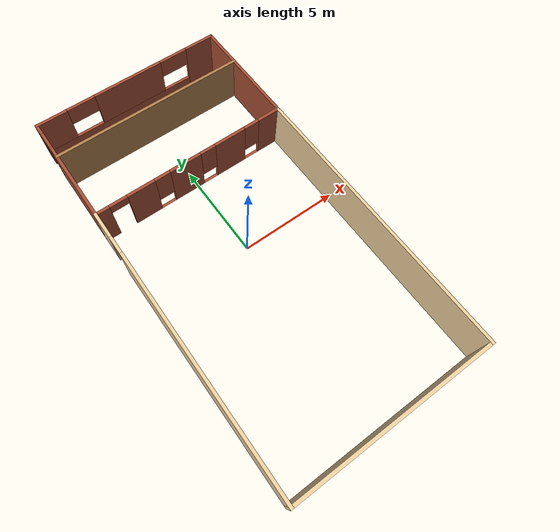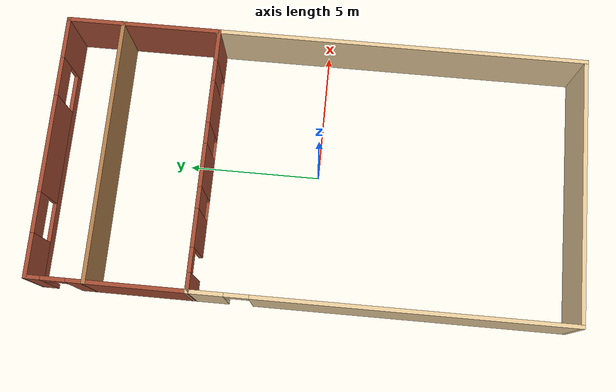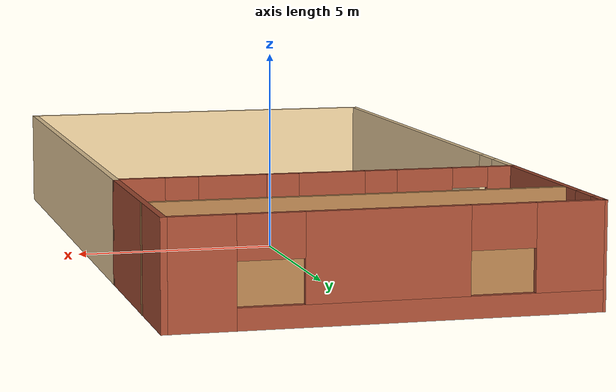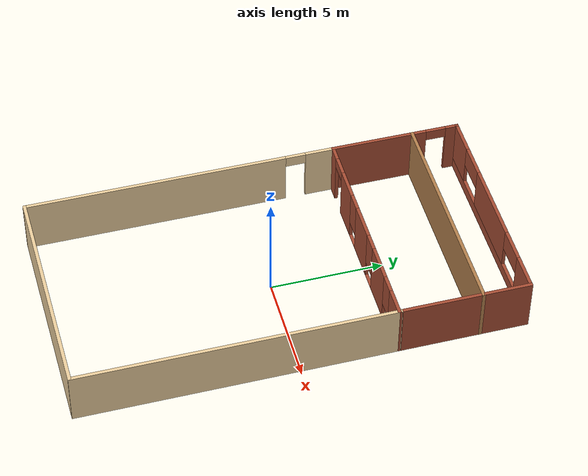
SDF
<?xml version='1.0'?>
<sdf version='1.7'>
  <model name='Gallinero_base_v2_egguard'>
    <pose>-0.155302 0.149481 0 0 -0 0</pose>
    <link name='Wall_0'>
      <collision name='Wall_0_Collision'>
        <geometry>
          <box>
            <size>10 0.15 2.5</size>
          </box>
        </geometry>
        <pose>0 0 1.25 0 -0 0</pose>
      </collision>
      <visual name='Wall_0_Visual'>
        <pose>0 0 1.25 0 -0 0</pose>
        <geometry>
          <box>
            <size>10 0.15 2.5</size>
          </box>
        </geometry>
        <material>
          <script>
            <uri>file://media/materials/scripts/gazebo.material</uri>
            <name>Gazebo/Grey</name>
          </script>
          <ambient>0.921569 0.807843 0.615686 1</ambient>
        </material>
        <meta>
          <layer>0</layer>
        </meta>
      </visual>
      <pose>-0.004735 -9.79369 0 0 -0 0</pose>
    </link>
    <link name='Wall_13'>
      <pose>0.004802 9.79352 0 0 -0 3.14159</pose>
      <visual name='Wall_13_Visual_0'>
        <pose>-4.17385 0 1.25 0 -0 0</pose>
        <geometry>
          <box>
            <size>1.6413 0.15 2.5</size>
          </box>
        </geometry>
        <material>
          <script>
            <uri>file://media/materials/scripts/gazebo.material</uri>
            <name>Gazebo/Bricks</name>
          </script>
          <ambient>0.921569 0.807843 0.615686 1</ambient>
        </material>
        <meta>
          <layer>0</layer>
        </meta>
      </visual>
      <collision name='Wall_13_Collision_0'>
        <geometry>
          <box>
            <size>1.6413 0.15 2.5</size>
          </box>
        </geometry>
        <pose>-4.17385 0 1.25 0 -0 0</pose>
      </collision>
      <visual name='Wall_13_Visual_1'>
        <pose>0.82065 0 0.25 0 -0 0</pose>
        <geometry>
          <box>
            <size>8.3477 0.15 0.5</size>
          </box>
        </geometry>
        <material>
          <script>
            <uri>file://media/materials/scripts/gazebo.material</uri>
            <name>Gazebo/Bricks</name>
          </script>
          <ambient>0.921569 0.807843 0.615686 1</ambient>
        </material>
        <meta>
          <layer>0</layer>
        </meta>
      </visual>
      <collision name='Wall_13_Collision_1'>
        <geometry>
          <box>
            <size>8.3477 0.15 0.5</size>
          </box>
        </geometry>
        <pose>0.82065 0 0.25 0 -0 0</pose>
      </collision>
      <visual name='Wall_13_Visual_2'>
        <pose>-0.000719 0 1.5 0 -0 0</pose>
        <geometry>
          <box>
            <size>3.70496 0.15 2</size>
          </box>
        </geometry>
        <material>
          <script>
            <uri>file://media/materials/scripts/gazebo.material</uri>
            <name>Gazebo/Bricks</name>
          </script>
          <ambient>0.921569 0.807843 0.615686 1</ambient>
        </material>
        <meta>
          <layer>0</layer>
        </meta>
      </visual>
      <collision name='Wall_13_Collision_2'>
        <geometry>
          <box>
            <size>3.70496 0.15 2</size>
          </box>
        </geometry>
        <pose>-0.000719 0 1.5 0 -0 0</pose>
      </collision>
      <visual name='Wall_13_Visual_3'>
        <pose>4.17313 0 1.5 0 -0 0</pose>
        <geometry>
          <box>
            <size>1.64274 0.15 2</size>
          </box>
        </geometry>
        <material>
          <script>
            <uri>file://media/materials/scripts/gazebo.material</uri>
            <name>Gazebo/Bricks</name>
          </script>
          <ambient>0.921569 0.807843 0.615686 1</ambient>
        </material>
        <meta>
          <layer>0</layer>
        </meta>
      </visual>
      <collision name='Wall_13_Collision_3'>
        <geometry>
          <box>
            <size>1.64274 0.15 2</size>
          </box>
        </geometry>
        <pose>4.17313 0 1.5 0 -0 0</pose>
      </collision>
      <visual name='Wall_13_Visual_4'>
        <pose>-2.6032 0 2 0 -0 0</pose>
        <geometry>
          <box>
            <size>1.5 0.15 1</size>
          </box>
        </geometry>
        <material>
          <script>
            <uri>file://media/materials/scripts/gazebo.material</uri>
            <name>Gazebo/Bricks</name>
          </script>
          <ambient>0.921569 0.807843 0.615686 1</ambient>
        </material>
        <meta>
          <layer>0</layer>
        </meta>
      </visual>
      <collision name='Wall_13_Collision_4'>
        <geometry>
          <box>
            <size>1.5 0.15 1</size>
          </box>
        </geometry>
        <pose>-2.6032 0 2 0 -0 0</pose>
      </collision>
      <visual name='Wall_13_Visual_5'>
        <pose>2.60176 0 2 0 -0 0</pose>
        <geometry>
          <box>
            <size>1.5 0.15 1</size>
          </box>
        </geometry>
        <material>
          <script>
            <uri>file://media/materials/scripts/gazebo.material</uri>
            <name>Gazebo/Bricks</name>
          </script>
          <ambient>0.921569 0.807843 0.615686 1</ambient>
        </material>
        <meta>
          <layer>0</layer>
        </meta>
      </visual>
      <collision name='Wall_13_Collision_5'>
        <geometry>
          <box>
            <size>1.5 0.15 1</size>
          </box>
        </geometry>
        <pose>2.60176 0 2 0 -0 0</pose>
      </collision>
    </link>
    <link name='Wall_16'>
      <pose>-0.004735 4.05631 0 0 -0 0</pose>
      <visual name='Wall_16_Visual_0'>
        <pose>-4.62785 0 1.25 0 -0 0</pose>
        <geometry>
          <box>
            <size>0.744293 0.15 2.5</size>
          </box>
        </geometry>
        <material>
          <script>
            <uri>file://media/materials/scripts/gazebo.material</uri>
            <name>Gazebo/Bricks</name>
          </script>
          <ambient>0.921569 0.807843 0.615686 1</ambient>
        </material>
        <meta>
          <layer>0</layer>
        </meta>
      </visual>
      <collision name='Wall_16_Collision_0'>
        <geometry>
          <box>
            <size>0.744293 0.15 2.5</size>
          </box>
        </geometry>
        <pose>-4.62785 0 1.25 0 -0 0</pose>
      </collision>
      <visual name='Wall_16_Visual_1'>
        <pose>-2.64934 0 1.25 0 -0 0</pose>
        <geometry>
          <box>
            <size>1.41273 0.15 2.5</size>
          </box>
        </geometry>
        <material>
          <script>
            <uri>file://media/materials/scripts/gazebo.material</uri>
            <name>Gazebo/Bricks</name>
          </script>
          <ambient>0.921569 0.807843 0.615686 1</ambient>
        </material>
        <meta>
          <layer>0</layer>
        </meta>
      </visual>
      <collision name='Wall_16_Collision_1'>
        <geometry>
          <box>
            <size>1.41273 0.15 2.5</size>
          </box>
        </geometry>
        <pose>-2.64934 0 1.25 0 -0 0</pose>
      </collision>
      <visual name='Wall_16_Visual_2'>
        <pose>-0.32065 0 1.25 0 -0 0</pose>
        <geometry>
          <box>
            <size>1.64466 0.15 2.5</size>
          </box>
        </geometry>
        <material>
          <script>
            <uri>file://media/materials/scripts/gazebo.material</uri>
            <name>Gazebo/Bricks</name>
          </script>
          <ambient>0.921569 0.807843 0.615686 1</ambient>
        </material>
        <meta>
          <layer>0</layer>
        </meta>
      </visual>
      <collision name='Wall_16_Collision_2'>
        <geometry>
          <box>
            <size>1.64466 0.15 2.5</size>
          </box>
        </geometry>
        <pose>-0.32065 0 1.25 0 -0 0</pose>
      </collision>
      <visual name='Wall_16_Visual_3'>
        <pose>2.12969 0 1.25 0 -0 0</pose>
        <geometry>
          <box>
            <size>1.65603 0.15 2.5</size>
          </box>
        </geometry>
        <material>
          <script>
            <uri>file://media/materials/scripts/gazebo.material</uri>
            <name>Gazebo/Bricks</name>
          </script>
          <ambient>0.921569 0.807843 0.615686 1</ambient>
        </material>
        <meta>
          <layer>0</layer>
        </meta>
      </visual>
      <collision name='Wall_16_Collision_3'>
        <geometry>
          <box>
            <size>1.65603 0.15 2.5</size>
          </box>
        </geometry>
        <pose>2.12969 0 1.25 0 -0 0</pose>
      </collision>
      <visual name='Wall_16_Visual_4'>
        <pose>4.37885 0 1.25 0 -0 0</pose>
        <geometry>
          <box>
            <size>1.24229 0.15 2.5</size>
          </box>
        </geometry>
        <material>
          <script>
            <uri>file://media/materials/scripts/gazebo.material</uri>
            <name>Gazebo/Bricks</name>
          </script>
          <ambient>0.921569 0.807843 0.615686 1</ambient>
        </material>
        <meta>
          <layer>0</layer>
        </meta>
      </visual>
      <collision name='Wall_16_Collision_4'>
        <geometry>
          <box>
            <size>1.24229 0.15 2.5</size>
          </box>
        </geometry>
        <pose>4.37885 0 1.25 0 -0 0</pose>
      </collision>
      <visual name='Wall_16_Visual_5'>
        <pose>-1.54298 0 0 0 -0 0</pose>
        <geometry>
          <box>
            <size>0.8 0.15 0</size>
          </box>
        </geometry>
        <material>
          <script>
            <uri>file://media/materials/scripts/gazebo.material</uri>
            <name>Gazebo/Bricks</name>
          </script>
          <ambient>0.921569 0.807843 0.615686 1</ambient>
        </material>
        <meta>
          <layer>0</layer>
        </meta>
      </visual>
      <collision name='Wall_16_Collision_5'>
        <geometry>
          <box>
            <size>0.8 0.15 0</size>
          </box>
        </geometry>
        <pose>-1.54298 0 0 0 -0 0</pose>
      </collision>
      <visual name='Wall_16_Visual_6'>
        <pose>0.901679 0 0 0 -0 0</pose>
        <geometry>
          <box>
            <size>0.8 0.15 0</size>
          </box>
        </geometry>
        <material>
          <script>
            <uri>file://media/materials/scripts/gazebo.material</uri>
            <name>Gazebo/Bricks</name>
          </script>
          <ambient>0.921569 0.807843 0.615686 1</ambient>
        </material>
        <meta>
          <layer>0</layer>
        </meta>
      </visual>
      <collision name='Wall_16_Collision_6'>
        <geometry>
          <box>
            <size>0.8 0.15 0</size>
          </box>
        </geometry>
        <pose>0.901679 0 0 0 -0 0</pose>
      </collision>
      <visual name='Wall_16_Visual_7'>
        <pose>3.35771 0 0 0 -0 0</pose>
        <geometry>
          <box>
            <size>0.8 0.15 0</size>
          </box>
        </geometry>
        <material>
          <script>
            <uri>file://media/materials/scripts/gazebo.material</uri>
            <name>Gazebo/Bricks</name>
          </script>
          <ambient>0.921569 0.807843 0.615686 1</ambient>
        </material>
        <meta>
          <layer>0</layer>
        </meta>
      </visual>
      <collision name='Wall_16_Collision_7'>
        <geometry>
          <box>
            <size>0.8 0.15 0</size>
          </box>
        </geometry>
        <pose>3.35771 0 0 0 -0 0</pose>
      </collision>
      <visual name='Wall_16_Visual_8'>
        <pose>-1.54298 0 1.65 0 -0 0</pose>
        <geometry>
          <box>
            <size>0.8 0.15 1.7</size>
          </box>
        </geometry>
        <material>
          <script>
            <uri>file://media/materials/scripts/gazebo.material</uri>
            <name>Gazebo/Bricks</name>
          </script>
          <ambient>0.921569 0.807843 0.615686 1</ambient>
        </material>
        <meta>
          <layer>0</layer>
        </meta>
      </visual>
      <collision name='Wall_16_Collision_8'>
        <geometry>
          <box>
            <size>0.8 0.15 1.7</size>
          </box>
        </geometry>
        <pose>-1.54298 0 1.65 0 -0 0</pose>
      </collision>
      <visual name='Wall_16_Visual_9'>
        <pose>0.901679 0 1.65 0 -0 0</pose>
        <geometry>
          <box>
            <size>0.8 0.15 1.7</size>
          </box>
        </geometry>
        <material>
          <script>
            <uri>file://media/materials/scripts/gazebo.material</uri>
            <name>Gazebo/Bricks</name>
          </script>
          <ambient>0.921569 0.807843 0.615686 1</ambient>
        </material>
        <meta>
          <layer>0</layer>
        </meta>
      </visual>
      <collision name='Wall_16_Collision_9'>
        <geometry>
          <box>
            <size>0.8 0.15 1.7</size>
          </box>
        </geometry>
        <pose>0.901679 0 1.65 0 -0 0</pose>
      </collision>
      <visual name='Wall_16_Visual_10'>
        <pose>3.35771 0 1.65 0 -0 0</pose>
        <geometry>
          <box>
            <size>0.8 0.15 1.7</size>
          </box>
        </geometry>
        <material>
          <script>
            <uri>file://media/materials/scripts/gazebo.material</uri>
            <name>Gazebo/Bricks</name>
          </script>
          <ambient>0.921569 0.807843 0.615686 1</ambient>
        </material>
        <meta>
          <layer>0</layer>
        </meta>
      </visual>
      <collision name='Wall_16_Collision_10'>
        <geometry>
          <box>
            <size>0.8 0.15 1.7</size>
          </box>
        </geometry>
        <pose>3.35771 0 1.65 0 -0 0</pose>
      </collision>
      <visual name='Wall_16_Visual_11'>
        <pose>-3.80571 0 2.25 0 -0 0</pose>
        <geometry>
          <box>
            <size>0.9 0.15 0.5</size>
          </box>
        </geometry>
        <material>
          <script>
            <uri>file://media/materials/scripts/gazebo.material</uri>
            <name>Gazebo/Bricks</name>
          </script>
          <ambient>0.921569 0.807843 0.615686 1</ambient>
        </material>
        <meta>
          <layer>0</layer>
        </meta>
      </visual>
      <collision name='Wall_16_Collision_11'>
        <geometry>
          <box>
            <size>0.9 0.15 0.5</size>
          </box>
        </geometry>
        <pose>-3.80571 0 2.25 0 -0 0</pose>
      </collision>
    </link>
    <link name='Wall_19'>
      <collision name='Wall_19_Collision'>
        <geometry>
          <box>
            <size>10 0.15 2.5</size>
          </box>
        </geometry>
        <pose>0 0 1.25 0 -0 0</pose>
      </collision>
      <visual name='Wall_19_Visual'>
        <pose>0 0 1.25 0 -0 0</pose>
        <geometry>
          <box>
            <size>10 0.15 2.5</size>
          </box>
        </geometry>
        <material>
          <script>
            <uri>file://media/materials/scripts/gazebo.material</uri>
            <name>Gazebo/Wood</name>
          </script>
          <ambient>1 1 1 1</ambient>
        </material>
        <meta>
          <layer>0</layer>
        </meta>
      </visual>
      <pose>0.004932 7.71552 0 0 -0 0</pose>
    </link>
    <link name='Wall_27'>
      <pose>-4.92222 6.92491 0 0 -0 -1.57342</pose>
      <visual name='Wall_27_Visual_0'>
        <pose>-2.63497 0 1.25 0 -0 0</pose>
        <geometry>
          <box>
            <size>0.617294 0.15 2.5</size>
          </box>
        </geometry>
        <material>
          <script>
            <uri>file://media/materials/scripts/gazebo.material</uri>
            <name>Gazebo/Bricks</name>
          </script>
          <ambient>1 1 1 1</ambient>
        </material>
        <meta>
          <layer>0</layer>
        </meta>
      </visual>
      <collision name='Wall_27_Collision_0'>
        <geometry>
          <box>
            <size>0.617294 0.15 2.5</size>
          </box>
        </geometry>
        <pose>-2.63497 0 1.25 0 -0 0</pose>
      </collision>
      <visual name='Wall_27_Visual_1'>
        <pose>0.758647 0 1.25 0 -0 0</pose>
        <geometry>
          <box>
            <size>4.36994 0.15 2.5</size>
          </box>
        </geometry>
        <material>
          <script>
            <uri>file://media/materials/scripts/gazebo.material</uri>
            <name>Gazebo/Bricks</name>
          </script>
          <ambient>1 1 1 1</ambient>
        </material>
        <meta>
          <layer>0</layer>
        </meta>
      </visual>
      <collision name='Wall_27_Collision_1'>
        <geometry>
          <box>
            <size>4.36994 0.15 2.5</size>
          </box>
        </geometry>
        <pose>0.758647 0 1.25 0 -0 0</pose>
      </collision>
      <visual name='Wall_27_Visual_2'>
        <pose>-1.87632 0 2.25 0 -0 0</pose>
        <geometry>
          <box>
            <size>0.9 0.15 0.5</size>
          </box>
        </geometry>
        <material>
          <script>
            <uri>file://media/materials/scripts/gazebo.material</uri>
            <name>Gazebo/Bricks</name>
          </script>
          <ambient>1 1 1 1</ambient>
        </material>
        <meta>
          <layer>0</layer>
        </meta>
      </visual>
      <collision name='Wall_27_Collision_2'>
        <geometry>
          <box>
            <size>0.9 0.15 0.5</size>
          </box>
        </geometry>
        <pose>-1.87632 0 2.25 0 -0 0</pose>
      </collision>
    </link>
    <link name='Wall_36'>
      <collision name='Wall_36_Collision'>
        <geometry>
          <box>
            <size>5.79548 0.15 2.5</size>
          </box>
        </geometry>
        <pose>0 0 1.25 0 -0 0</pose>
      </collision>
      <visual name='Wall_36_Visual'>
        <pose>0 0 1.25 0 -0 0</pose>
        <geometry>
          <box>
            <size>5.79548 0.15 2.5</size>
          </box>
        </geometry>
        <material>
          <script>
            <uri>file://media/materials/scripts/gazebo.material</uri>
            <name>Gazebo/Bricks</name>
          </script>
          <ambient>1 1 1 1</ambient>
        </material>
        <meta>
          <layer>0</layer>
        </meta>
      </visual>
      <pose>4.9243 6.97078 0 0 -0 -1.5708</pose>
    </link>
    <link name='Wall_40'>
      <collision name='Wall_40_Collision'>
        <geometry>
          <box>
            <size>14.0744 0.15 2.5</size>
          </box>
        </geometry>
        <pose>0 0 1.25 0 -0 0</pose>
      </collision>
      <visual name='Wall_40_Visual'>
        <pose>0 0 1.25 0 -0 0</pose>
        <geometry>
          <box>
            <size>14.0744 0.15 2.5</size>
          </box>
        </geometry>
        <material>
          <script>
            <uri>file://media/materials/scripts/gazebo.material</uri>
            <name>Gazebo/Grey</name>
          </script>
          <ambient>0.921569 0.807843 0.615686 1</ambient>
        </material>
        <meta>
          <layer>0</layer>
        </meta>
      </visual>
      <pose>4.92228 -2.83148 0 0 -0 1.57051</pose>
    </link>
    <link name='Wall_42'>
      <pose>-4.92973 -2.86869 0 0 -0 1.5708</pose>
      <visual name='Wall_42_Visual_0'>
        <pose>-1.13252 0 1.25 0 -0 0</pose>
        <geometry>
          <box>
            <size>11.735 0.15 2.5</size>
          </box>
        </geometry>
        <material>
          <script>
            <uri>file://media/materials/scripts/gazebo.material</uri>
            <name>Gazebo/Grey</name>
          </script>
          <ambient>0.921569 0.807843 0.615686 1</ambient>
        </material>
        <meta>
          <layer>0</layer>
        </meta>
      </visual>
      <collision name='Wall_42_Collision_0'>
        <geometry>
          <box>
            <size>11.735 0.15 2.5</size>
          </box>
        </geometry>
        <pose>-1.13252 0 1.25 0 -0 0</pose>
      </collision>
      <visual name='Wall_42_Visual_1'>
        <pose>6.31748 0 1.25 0 -0 0</pose>
        <geometry>
          <box>
            <size>1.36504 0.15 2.5</size>
          </box>
        </geometry>
        <material>
          <script>
            <uri>file://media/materials/scripts/gazebo.material</uri>
            <name>Gazebo/Grey</name>
          </script>
          <ambient>0.921569 0.807843 0.615686 1</ambient>
        </material>
        <meta>
          <layer>0</layer>
        </meta>
      </visual>
      <collision name='Wall_42_Collision_1'>
        <geometry>
          <box>
            <size>1.36504 0.15 2.5</size>
          </box>
        </geometry>
        <pose>6.31748 0 1.25 0 -0 0</pose>
      </collision>
      <visual name='Wall_42_Visual_2'>
        <pose>5.18496 0 2.25 0 -0 0</pose>
        <geometry>
          <box>
            <size>0.9 0.15 0.5</size>
          </box>
        </geometry>
        <material>
          <script>
            <uri>file://media/materials/scripts/gazebo.material</uri>
            <name>Gazebo/Grey</name>
          </script>
          <ambient>0.921569 0.807843 0.615686 1</ambient>
        </material>
        <meta>
          <layer>0</layer>
        </meta>
      </visual>
      <collision name='Wall_42_Collision_2'>
        <geometry>
          <box>
            <size>0.9 0.15 0.5</size>
          </box>
        </geometry>
        <pose>5.18496 0 2.25 0 -0 0</pose>
      </collision>
    </link>
    <static>1</static>
  </model>
</sdf>
